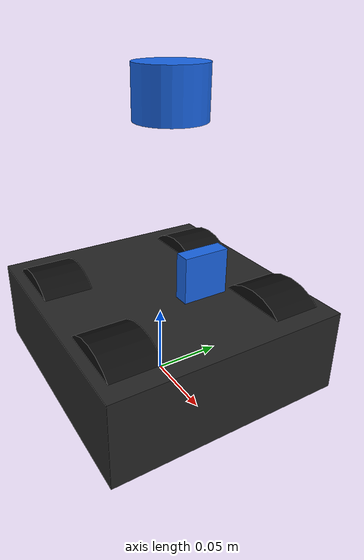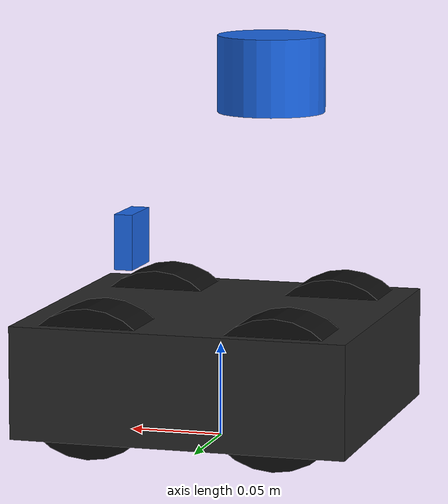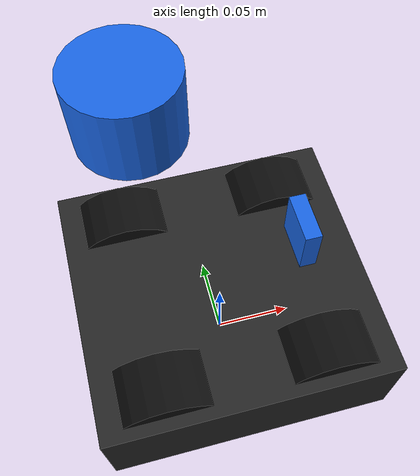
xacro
<?xml version="1.0"?>
<!-- Wave Rover. Maten nagemeten op 2026-10-21; positie van de IMU nog geschat. -->
<robot name="wave_rover" xmlns:xacro="http://www.ros.org/wiki/xacro">

  <xacro:property name="body_length" value="0.18"/>
  <xacro:property name="body_width" value="0.17"/>
  <xacro:property name="body_height" value="0.06"/>
  <xacro:property name="wheel_radius" value="0.04"/>
  <xacro:property name="wheel_width" value="0.035"/>
  <xacro:property name="wheel_base" value="0.10"/>
  <xacro:property name="track_width" value="0.12"/>

  <material name="body"><color rgba="0.15 0.15 0.15 1"/></material>
  <material name="wheel"><color rgba="0.05 0.05 0.05 1"/></material>
  <material name="sensor"><color rgba="0.1 0.4 0.9 1"/></material>

  <!-- base_footprint ligt op de grond onder het midden van de robot. -->
  <link name="base_footprint"/>

  <link name="base_link">
    <visual>
      <geometry><box size="${body_length} ${body_width} ${body_height}"/></geometry>
      <material name="body"/>
    </visual>
    <collision>
      <geometry><box size="${body_length} ${body_width} ${body_height}"/></geometry>
    </collision>
  </link>
  <joint name="base_joint" type="fixed">
    <parent link="base_footprint"/>
    <child link="base_link"/>
    <origin xyz="0 0 ${wheel_radius}"/>
  </joint>

  <xacro:macro name="wheel" params="name x y">
    <link name="${name}_wheel">
      <visual>
        <origin rpy="${pi/2} 0 0"/>
        <geometry><cylinder radius="${wheel_radius}" length="${wheel_width}"/></geometry>
        <material name="wheel"/>
      </visual>
    </link>
    <joint name="${name}_wheel_joint" type="fixed">
      <parent link="base_link"/>
      <child link="${name}_wheel"/>
      <origin xyz="${x} ${y} 0"/>
    </joint>
  </xacro:macro>

  <xacro:wheel name="front_left" x="${wheel_base/2}" y="${track_width/2}"/>
  <xacro:wheel name="front_right" x="${wheel_base/2}" y="${-track_width/2}"/>
  <xacro:wheel name="rear_left" x="${-wheel_base/2}" y="${track_width/2}"/>
  <xacro:wheel name="rear_right" x="${-wheel_base/2}" y="${-track_width/2}"/>

  <link name="imu_link"/>
  <joint name="imu_joint" type="fixed">
    <parent link="base_link"/>
    <child link="imu_link"/>
    <origin xyz="0 0 0.01"/>
  </joint>

  <link name="laser">
    <visual>
      <geometry><cylinder radius="0.028" length="0.04"/></geometry>
      <material name="sensor"/>
    </visual>
  </link>
  <joint name="laser_joint" type="fixed">
    <parent link="base_link"/>
    <child link="laser"/>
    <origin xyz="${body_length/2 - 0.7*body_length} 0.03 ${0.20 - wheel_radius}" rpy="0 0 ${pi}"/>
  </joint>

  <link name="camera_link">
    <visual>
      <geometry><box size="0.01 0.03 0.03"/></geometry>
      <material name="sensor"/>
    </visual>
  </link>
  <!-- Camera ligt plat op het chassis, in het midden, 4 cm van de voorrand; midden van de
       lens 10,5 cm boven de vloer (gemeten 28-10-2026). -->
  <joint name="camera_joint" type="fixed">
    <parent link="base_link"/>
    <child link="camera_link"/>
    <origin xyz="${body_length/2 - 0.04} 0 ${0.105 - wheel_radius}"/>
  </joint>

</robot>
